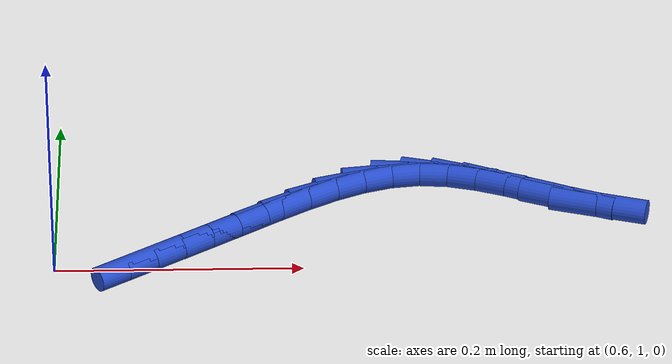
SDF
<sdf version="1.6">
 <world name="default">
  <model name="ground_plane">
   <static>1</static>
   <link name="link">
    <collision name="collision">
     <geometry><plane><normal>0 0 1</normal><size>100 100</size></plane></geometry>
     <surface><friction><ode><mu>100</mu><mu2>50</mu2></ode></friction></surface>
    </collision>
    <visual name="visual">
     <cast_shadows>0</cast_shadows>
     <geometry><plane><normal>0 0 1</normal><size>100 100</size></plane></geometry>
     <material>
      <script><uri>file://media/materials/scripts/gazebo.material</uri><name>Gazebo/WhiteGlow</name></script>
     </material>
    </visual>
   </link>
  </model>
  <model name="line">
   <link name="link_50">
    <pose>0.668957059940801 0.9964223729823366 0.01 0 1.57 0.5699362455939248</pose>
    <collision name="collision">
     <geometry><cylinder><radius>0.01</radius><length>0.08</length></cylinder></geometry>
    </collision>
    <visual name="visual">
     <material>
      <script><name>Gazebo/Blue</name><uri>file://media/materials/scripts/gazebo.material</uri></script>
     </material>
     <geometry><cylinder><radius>0.01</radius><length>0.08</length></cylinder></geometry>
    </visual>
   </link>
   <link name="link_51">
    <pose>0.6905332586276066 1.0102500971643218 0.01 0 1.57 0.5706881623914819</pose>
    <collision name="collision">
     <geometry><cylinder><radius>0.01</radius><length>0.08</length></cylinder></geometry>
    </collision>
    <visual name="visual">
     <material>
      <script><name>Gazebo/Blue</name><uri>file://media/materials/scripts/gazebo.material</uri></script>
     </material>
     <geometry><cylinder><radius>0.01</radius><length>0.08</length></cylinder></geometry>
    </visual>
   </link>
   <link name="link_52">
    <pose>0.7123632952107328 1.0242636679626074 0.01 0 1.57 0.5732633837373443</pose>
    <collision name="collision">
     <geometry><cylinder><radius>0.01</radius><length>0.08</length></cylinder></geometry>
    </collision>
    <visual name="visual">
     <material>
      <script><name>Gazebo/Blue</name><uri>file://media/materials/scripts/gazebo.material</uri></script>
     </material>
     <geometry><cylinder><radius>0.01</radius><length>0.08</length></cylinder></geometry>
    </visual>
   </link>
   <link name="link_53">
    <pose>0.7344653397207553 1.0385323574303733 0.01 0 1.57 0.5775712684854327</pose>
    <collision name="collision">
     <geometry><cylinder><radius>0.01</radius><length>0.08</length></cylinder></geometry>
    </collision>
    <visual name="visual">
     <material>
      <script><name>Gazebo/Blue</name><uri>file://media/materials/scripts/gazebo.material</uri></script>
     </material>
     <geometry><cylinder><radius>0.01</radius><length>0.08</length></cylinder></geometry>
    </visual>
   </link>
   <link name="link_54">
    <pose>0.7568575617105875 1.053125429020058 0.01 0 1.57 0.5780664597320873</pose>
    <collision name="collision">
     <geometry><cylinder><radius>0.01</radius><length>0.08</length></cylinder></geometry>
    </collision>
    <visual name="visual">
     <material>
      <script><name>Gazebo/Blue</name><uri>file://media/materials/scripts/gazebo.material</uri></script>
     </material>
     <geometry><cylinder><radius>0.01</radius><length>0.08</length></cylinder></geometry>
    </visual>
   </link>
   <link name="link_55">
    <pose>0.7795479498108024 1.0679288296686655 0.01 0 1.57 0.5552745668162153</pose>
    <collision name="collision">
     <geometry><cylinder><radius>0.01</radius><length>0.08</length></cylinder></geometry>
    </collision>
    <visual name="visual">
     <material>
      <script><name>Gazebo/Blue</name><uri>file://media/materials/scripts/gazebo.material</uri></script>
     </material>
     <geometry><cylinder><radius>0.01</radius><length>0.08</length></cylinder></geometry>
    </visual>
   </link>
   <link name="link_56">
    <pose>0.8025080863741231 1.0821729790659695 0.01 0 1.57 0.5032574268421592</pose>
    <collision name="collision">
     <geometry><cylinder><radius>0.01</radius><length>0.08</length></cylinder></geometry>
    </collision>
    <visual name="visual">
     <material>
      <script><name>Gazebo/Blue</name><uri>file://media/materials/scripts/gazebo.material</uri></script>
     </material>
     <geometry><cylinder><radius>0.01</radius><length>0.08</length></cylinder></geometry>
    </visual>
   </link>
   <link name="link_57">
    <pose>0.8257014192618498 1.0949418281858048 0.01 0 1.57 0.41757989636411624</pose>
    <collision name="collision">
     <geometry><cylinder><radius>0.01</radius><length>0.08</length></cylinder></geometry>
    </collision>
    <visual name="visual">
     <material>
      <script><name>Gazebo/Blue</name><uri>file://media/materials/scripts/gazebo.material</uri></script>
     </material>
     <geometry><cylinder><radius>0.01</radius><length>0.08</length></cylinder></geometry>
    </visual>
   </link>
   <link name="link_58">
    <pose>0.8490913963352844 1.105319328002008 0.01 0 1.57 0.2916547116022732</pose>
    <collision name="collision">
     <geometry><cylinder><radius>0.01</radius><length>0.08</length></cylinder></geometry>
    </collision>
    <visual name="visual">
     <material>
      <script><name>Gazebo/Blue</name><uri>file://media/materials/scripts/gazebo.material</uri></script>
     </material>
     <geometry><cylinder><radius>0.01</radius><length>0.08</length></cylinder></geometry>
    </visual>
   </link>
   <link name="link_59">
    <pose>0.8726414654557277 1.1123894294884138 0.01 0 1.57 0.11967131604866799</pose>
    <collision name="collision">
     <geometry><cylinder><radius>0.01</radius><length>0.08</length></cylinder></geometry>
    </collision>
    <visual name="visual">
     <material>
      <script><name>Gazebo/Blue</name><uri>file://media/materials/scripts/gazebo.material</uri></script>
     </material>
     <geometry><cylinder><radius>0.01</radius><length>0.08</length></cylinder></geometry>
    </visual>
   </link>
   <link name="link_60">
    <pose>0.896315074484481 1.1152360836188584 0.01 0 1.57 -0.08290072320201426</pose>
    <collision name="collision">
     <geometry><cylinder><radius>0.01</radius><length>0.08</length></cylinder></geometry>
    </collision>
    <visual name="visual">
     <material>
      <script><name>Gazebo/Blue</name><uri>file://media/materials/scripts/gazebo.material</uri></script>
     </material>
     <geometry><cylinder><radius>0.01</radius><length>0.08</length></cylinder></geometry>
    </visual>
   </link>
   <link name="link_61">
    <pose>0.9200845213574799 1.1132610527223379 0.01 0 1.57 -0.2445703732241813</pose>
    <collision name="collision">
     <geometry><cylinder><radius>0.01</radius><length>0.08</length></cylinder></geometry>
    </collision>
    <visual name="visual">
     <material>
      <script><name>Gazebo/Blue</name><uri>file://media/materials/scripts/gazebo.material</uri></script>
     </material>
     <geometry><cylinder><radius>0.01</radius><length>0.08</length></cylinder></geometry>
    </visual>
   </link>
   <link name="link_62">
    <pose>0.9439620899557323 1.107302017796957 0.01 0 1.57 -0.347643867896469</pose>
    <collision name="collision">
     <geometry><cylinder><radius>0.01</radius><length>0.08</length></cylinder></geometry>
    </collision>
    <visual name="visual">
     <material>
      <script><name>Gazebo/Blue</name><uri>file://media/materials/scripts/gazebo.material</uri></script>
     </material>
     <geometry><cylinder><radius>0.01</radius><length>0.08</length></cylinder></geometry>
    </visual>
   </link>
   <link name="link_63">
    <pose>0.967971351775277 1.0986020046969172 0.01 0 1.57 -0.39934482599667137</pose>
    <collision name="collision">
     <geometry><cylinder><radius>0.01</radius><length>0.08</length></cylinder></geometry>
    </collision>
    <visual name="visual">
     <material>
      <script><name>Gazebo/Blue</name><uri>file://media/materials/scripts/gazebo.material</uri></script>
     </material>
     <geometry><cylinder><radius>0.01</radius><length>0.08</length></cylinder></geometry>
    </visual>
   </link>
   <link name="link_64">
    <pose>0.9921358789809869 1.0884040632946708 0.01 0 1.57 -0.4055839112769478</pose>
    <collision name="collision">
     <geometry><cylinder><radius>0.01</radius><length>0.08</length></cylinder></geometry>
    </collision>
    <visual name="visual">
     <material>
      <script><name>Gazebo/Blue</name><uri>file://media/materials/scripts/gazebo.material</uri></script>
     </material>
     <geometry><cylinder><radius>0.01</radius><length>0.08</length></cylinder></geometry>
    </visual>
   </link>
   <link name="link_65">
    <pose>1.0164792437377346 1.0779512434626701 0.01 0 1.57 -0.3680241096204158</pose>
    <collision name="collision">
     <geometry><cylinder><radius>0.01</radius><length>0.08</length></cylinder></geometry>
    </collision>
    <visual name="visual">
     <material>
      <script><name>Gazebo/Blue</name><uri>file://media/materials/scripts/gazebo.material</uri></script>
     </material>
     <geometry><cylinder><radius>0.01</radius><length>0.08</length></cylinder></geometry>
    </visual>
   </link>
   <link name="link_66">
    <pose>1.041025018210394 1.0684865950733677 0.01 0 1.57 -0.2841068414104589</pose>
    <collision name="collision">
     <geometry><cylinder><radius>0.01</radius><length>0.08</length></cylinder></geometry>
    </collision>
    <visual name="visual">
     <material>
      <script><name>Gazebo/Blue</name><uri>file://media/materials/scripts/gazebo.material</uri></script>
     </material>
     <geometry><cylinder><radius>0.01</radius><length>0.08</length></cylinder></geometry>
    </visual>
   </link>
  </model>
 </world>
</sdf>
